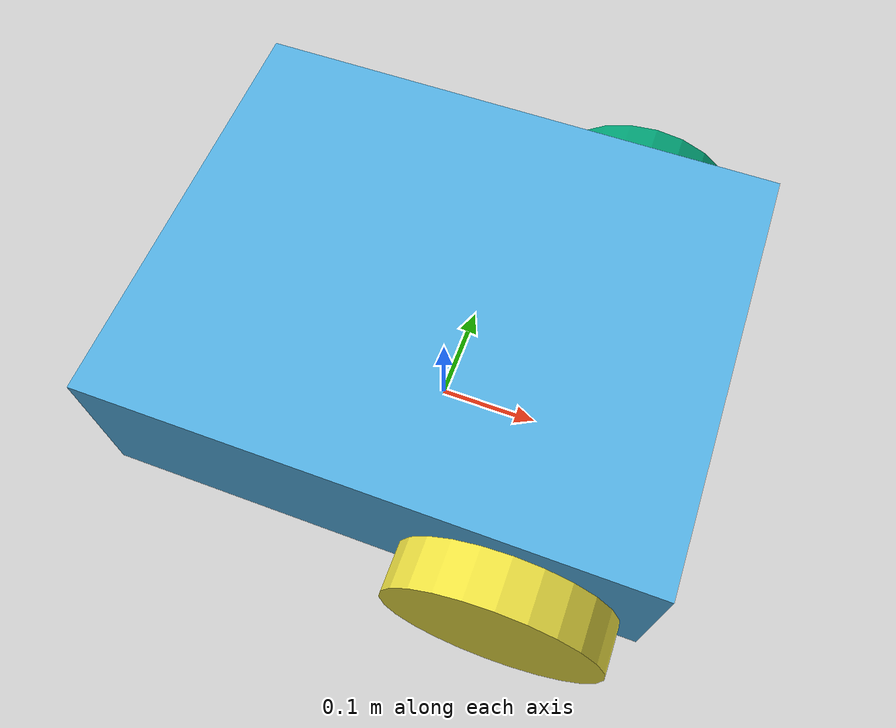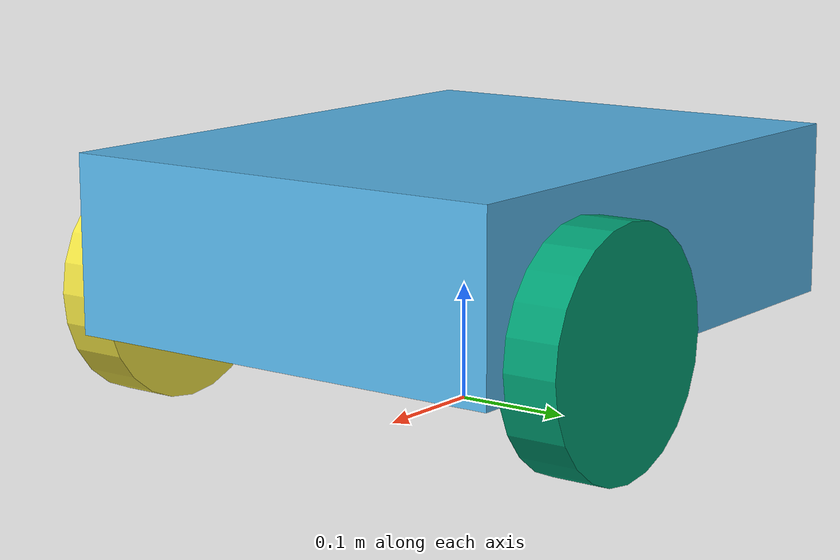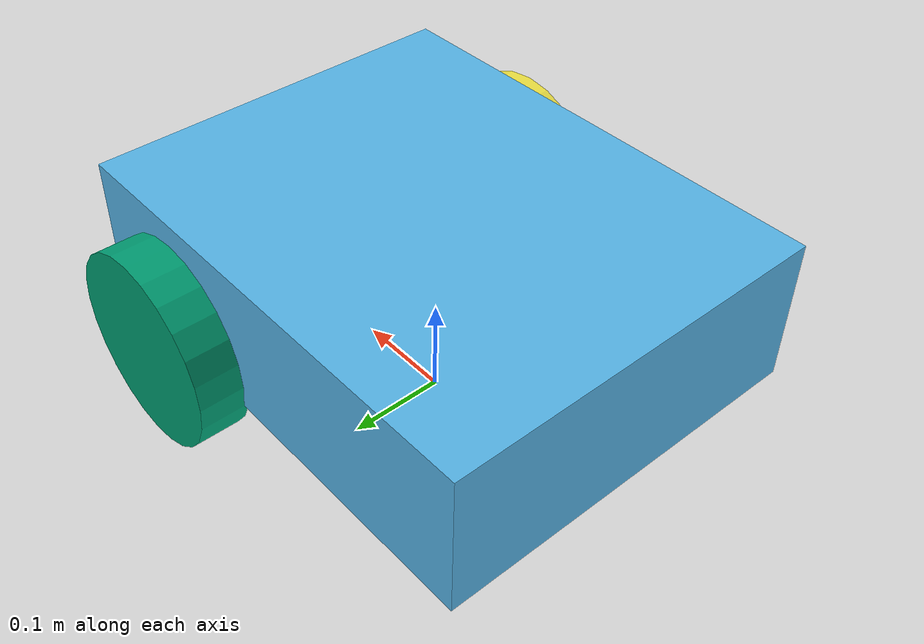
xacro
<?xml version="1.0"?>
<robot xmlns:xacro="http://www.ros.org/wiki/xacro"  >

    <link name="base_footprint"/>
  <joint name="base_joint" type="fixed">
    <parent link="base_footprint"/>
    <child link="base_link"/>
    <origin xyz="0 0 0.15"/>
  </joint>

  <link name="base_link">
    <visual><geometry><box size="0.5 0.4 0.15"/></geometry></visual>
    <collision><geometry><box size="0.5 0.4 0.15"/></geometry></collision>
    <inertial><mass value="20"/>
      <inertia ixx="0.2" iyy="0.2" izz="0.3" ixy="0" ixz="0" iyz="0"/>
    </inertial>
  </link>

  <!-- Left Wheel -->

  <joint name="left_wheel_joint" type="continuous">
    <parent link="base_link"/>
    <child link="left_wheel"/>
    <origin xyz="0.13 0.22 -0.05" rpy="-1.5708 0 0"/>
    <axis xyz="0 0 1"/>
  </joint>
  <link name="left_wheel">
    <visual><geometry><cylinder length="0.05" radius="0.1"/></geometry></visual>
    <collision><geometry><cylinder length="0.05" radius="0.1"/></geometry></collision>
    <inertial><mass value="2"/>
      <inertia ixx="0.01" iyy="0.01" izz="0.01" ixy="0" ixz="0" iyz="0"/>
    </inertial>
  </link>

<!-- Right Wheel -->

  <joint name="right_wheel_joint" type="continuous">
    <parent link="base_link"/>
    <child link="right_wheel"/>
    <origin xyz="0.13 -0.22 -0.05" rpy="-1.5708 0 0"/>
    <axis xyz="0 0 1"/>
  </joint>
  <link name="right_wheel">
    <visual><geometry><cylinder length="0.05" radius="0.1"/></geometry></visual>
    <collision><geometry><cylinder length="0.05" radius="0.1"/></geometry></collision>
    <inertial><mass value="2"/>
      <inertia ixx="0.01" iyy="0.01" izz="0.01" ixy="0" ixz="0" iyz="0"/>
    </inertial>
  </link>

<!-- Caster Wheel back -->

    <joint name="caster_back_joint" type="fixed">
        <parent link="base_link"/>
        <child link="caster_back"/>
        <origin xyz="-0.15 0 -0.10"/>
    </joint>
    <link name="caster_back">
        <visual><geometry><sphere length="0.05" radius="0.05"/></geometry></visual>
        <collision><geometry><sphere length="0.05" radius="0.05"/></geometry></collision>
        <inertial><mass value="1"/>
            <inertia ixx="0.005" iyy="0.005" izz="0.005" ixy="0" ixz="0" iyz="0"/>
        </inertial>
    </link>

    <gazebo reference="caster_back">
        <mu1 value= "0.001"/>
        <mu2 value="0.001"/>

        </gazebo>

</robot>
